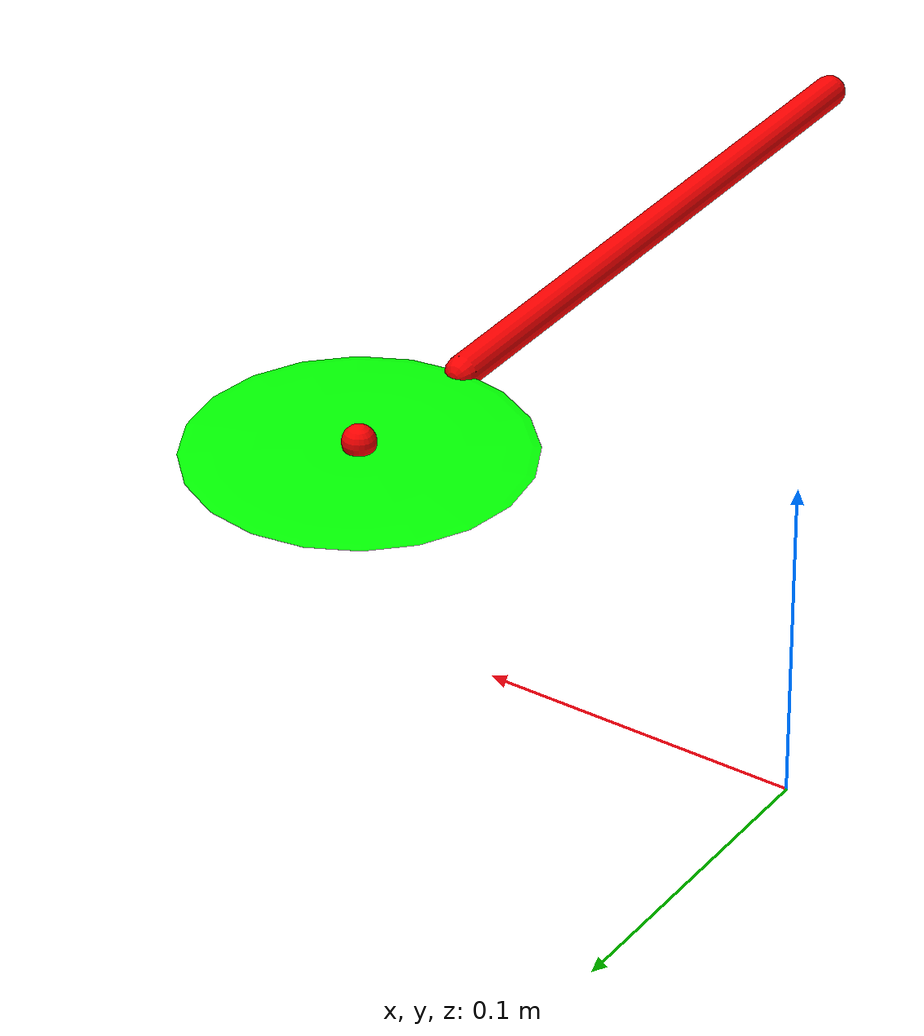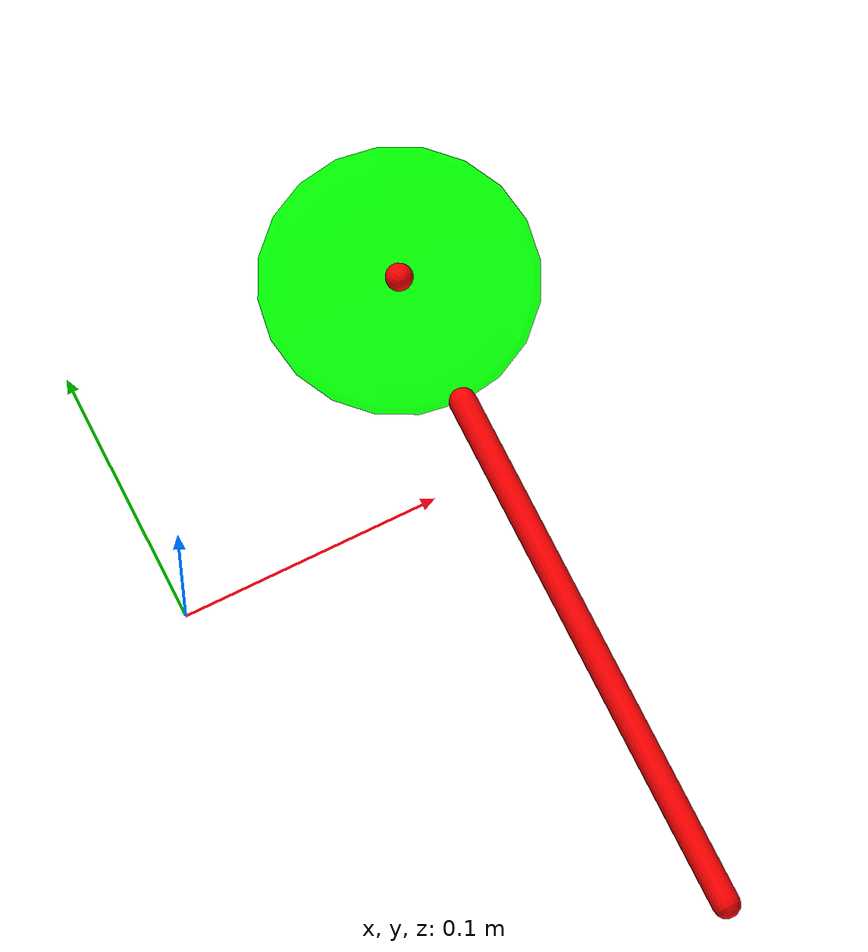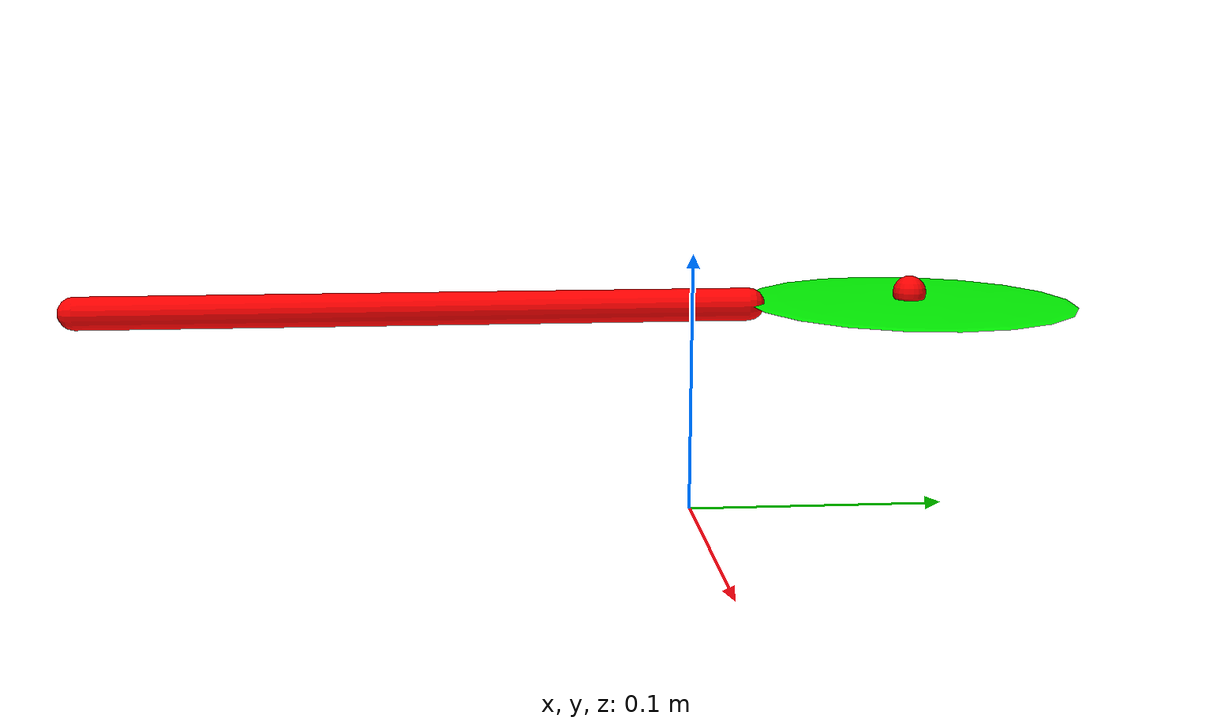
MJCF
<mujoco model="simple_spatula">
  <worldbody>
    <light pos="0 0 1" />
    <body name="spatula" pos="0.11 0.0 0.1" quat="1 0 0 0">
      <!-- tighter (less soft) contact solver parameters to improve blade's collision given its low thickness! -->
      <geom name="spatula" type="capsule" pos="0 -0.1 0" quat="0.707107 0.707107 0 0" size=".005 .1 0" rgba="1 0 0 1"
            solimp="0.9 0.95 0.001" solref="0.005 1"/>
      <geom name="blade" type="ellipsoid" pos="0 0.05 0 " size=".05 .05 .001" rgba="0 1 0 1"
            solimp="0.9 0.95 0.001" solref="0.005 1"/>
      <site name="grasp_site" pos="0. 0.05 0.003" size="0.005" rgba="1 0 0 1"/>
    </body>
  </worldbody>
</mujoco>
